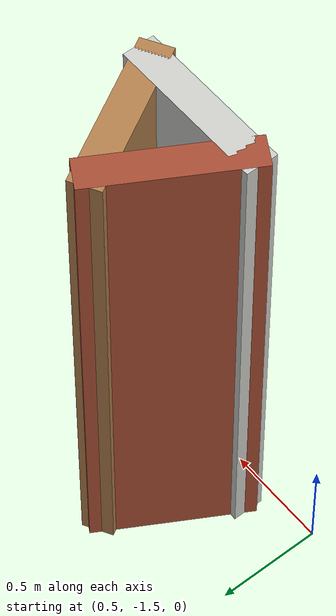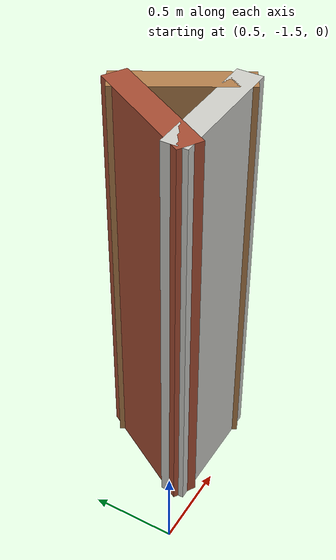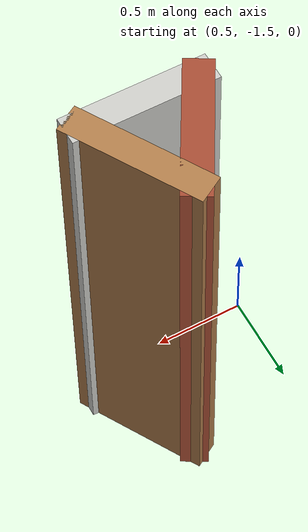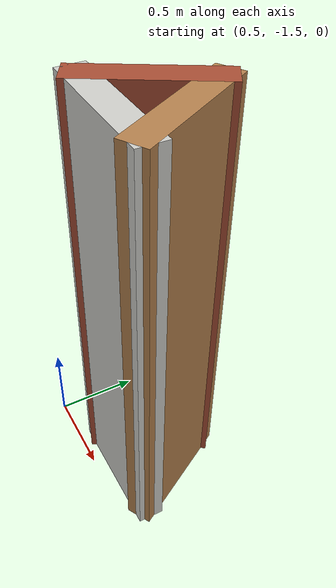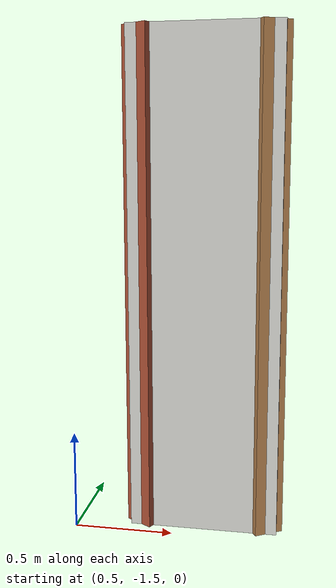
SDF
<?xml version='1.0'?>
<sdf version='1.7'>
  <model name='middle'>
    <pose>0.775592 -0.729912 0 0 -0 0</pose>
    <link name='Wall_24'>
      <collision name='Wall_24_Collision'>
        <geometry>
          <box>
            <size>0.75 0.15 2.5</size>
          </box>
        </geometry>
        <pose>0 0 1.25 0 -0 0</pose>
      </collision>
      <visual name='Wall_24_Visual'>
        <pose>0 0 1.25 0 -0 0</pose>
        <geometry>
          <box>
            <size>0.75 0.15 2.5</size>
          </box>
        </geometry>
        <material>
          <script>
            <uri>file://media/materials/scripts/gazebo.material</uri>
            <name>Gazebo/Bricks</name>
          </script>
          <ambient>1 1 1 1</ambient>
        </material>
        <meta>
          <layer>0</layer>
        </meta>
      </visual>
      <pose>0.22314 -0.367652 0 0 -0 -2.0944</pose>
    </link>
    <link name='Wall_30'>
      <collision name='Wall_30_Collision'>
        <geometry>
          <box>
            <size>0.75 0.15 2.5</size>
          </box>
        </geometry>
        <pose>0 0 1.25 0 -0 0</pose>
      </collision>
      <visual name='Wall_30_Visual'>
        <pose>0 0 1.25 0 -0 0</pose>
        <geometry>
          <box>
            <size>0.75 0.15 2.5</size>
          </box>
        </geometry>
        <material>
          <script>
            <uri>file://media/materials/scripts/gazebo.material</uri>
            <name>Gazebo/Wood</name>
          </script>
          <ambient>1 1 1 1</ambient>
        </material>
        <meta>
          <layer>0</layer>
        </meta>
      </visual>
      <pose>0.52314 -0.367652 0 0 -0 -1.0472</pose>
    </link>
    <link name='Wall_31'>
      <collision name='Wall_31_Collision'>
        <geometry>
          <box>
            <size>0.75 0.15 2.5</size>
          </box>
        </geometry>
        <pose>0 0 1.25 0 -0 0</pose>
      </collision>
      <visual name='Wall_31_Visual'>
        <pose>0 0 1.25 0 -0 0</pose>
        <geometry>
          <box>
            <size>0.75 0.15 2.5</size>
          </box>
        </geometry>
        <material>
          <script>
            <uri>file://media/materials/scripts/gazebo.material</uri>
            <name>Gazebo/CeilingTiled</name>
          </script>
          <ambient>1 1 1 1</ambient>
        </material>
        <meta>
          <layer>0</layer>
        </meta>
      </visual>
      <pose>0.37314 -0.62746 0 0 -0 3.14159</pose>
    </link>
    <static>1</static>
  </model>
</sdf>
